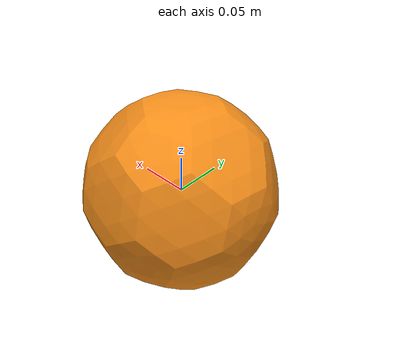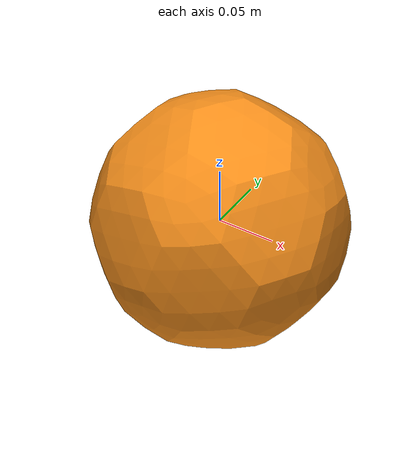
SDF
<?xml version='1.0'?>
<sdf version="1.6">
<model name="ball">
  <pose>0 0 0 0 0 0</pose>
  <static>false</static>
    <link name="link">
      <self_collide>0</self_collide>
      <inertial>
        <mass>0.41</mass>
          <inertia>
            <ixx>3.2e-03</ixx>
            <iyy>3.2e-03</iyy>
            <izz>3.2e-03</izz>
            <ixy>0</ixy>
            <ixz>0</ixz>
            <iyz>0</iyz>
          </inertia>
      </inertial>
      <collision name="collision">
        <geometry>
            <sphere>
              <radius>0.11</radius>
            </sphere>
        </geometry>
        <surface>
            <bounce>
              <restitution_coefficient>0.05</restitution_coefficient>
              <threshold>10</threshold>
            </bounce>
            <friction>
              <torsional>
                <coefficient>1.0</coefficient>
                <use_patch_radius>true</use_patch_radius>
                <patch_radius>0.05</patch_radius>
              </torsional>
              <ode>
                <mu>1</mu>
                <mu2>1</mu2>
              </ode>
            </friction>
            <contact>
              <ode>
                <max_vel>5</max_vel>
              </ode>
            </contact>
        </surface>
      </collision>

      <visual name="visual">
        <geometry>
          <mesh>
            <scale>0.11 0.11 0.11</scale>
            <uri>file://ball/meshes/ball.dae</uri>
          </mesh>
        </geometry>
        <material>
          <script>
            <uri>model://ball/materials/scripts</uri>
            <uri>model://ball/materials/textures</uri>
            <name>ball/Orange</name>
          </script>
        </material>
      </visual>

      <sensor name="contact" type="contact">
        <plugin name="contact" filename="libgazebo_ros_bumper.so">
          <robotNamespace>football</robotNamespace>
          <frameName>world</frameName>
        </plugin>
        <contact>
          <collision>collision</collision>
        </contact>
      </sensor>
    </link>

    <plugin name="ball_gazebo" filename="libball_gazebo.so"/>
  </model>
</sdf>
